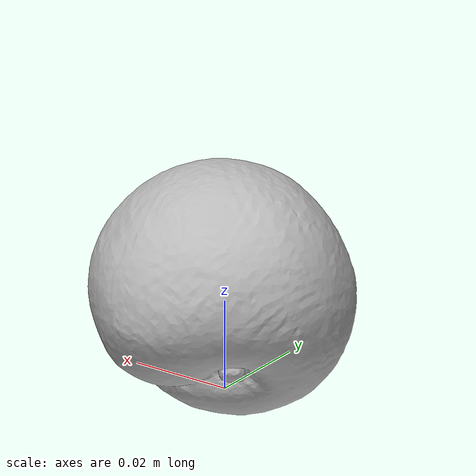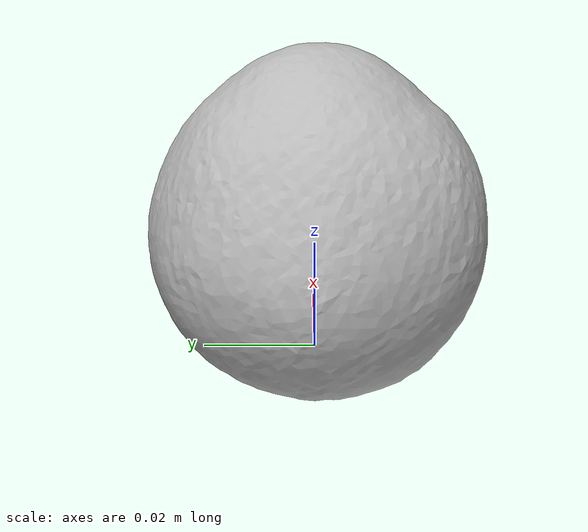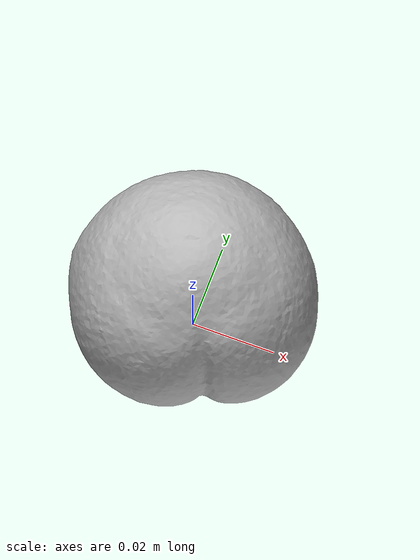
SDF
<?xml version="1.0" ?>
<sdf version='1.8'>
  <model name='ycb_018_plum'>
    <link name='body'>
      <inertial>
        <mass>0.025</mass>
        <pose>7.63887195e-05 -7.7683446e-06 0.0238733375 0 0 0</pose>
        <inertia>
          <ixx>7.29015772747e-06</ixx>
          <ixy>-8.35146906738e-08</ixy>
          <ixz>-6.09416095178e-08</ixz>
          <iyy>7.71168505326e-06</iyy>
          <iyz>1.30653911736e-07</iyz>
          <izz>7.75759371421e-06</izz>
        </inertia>
      </inertial>
      <visual name='ycb_018_plum_visual'>
        <pose>0.007819 -0.0195 0.000153 0 0 0</pose>
        <geometry>
          <mesh>
            <uri>model://ycb_018_plum/meshes/textured.dae</uri>
          </mesh>
        </geometry>
      </visual>
      <collision name='ycb_018_plum_collision'>
        <pose>0.007819 -0.0195 0.000153 0 0 0</pose>
        <geometry>
          <mesh>
            <uri>model://ycb_018_plum/meshes/nontextured.stl</uri>
          </mesh>
        </geometry>
        <max_contacts>10</max_contacts>
        <surface>
          <contact>
            <ode>
              <kp>1e15</kp>
              <kd>1e13</kd>
            </ode>
          </contact>
        </surface>
      </collision>
    </link>
  </model>
</sdf>
